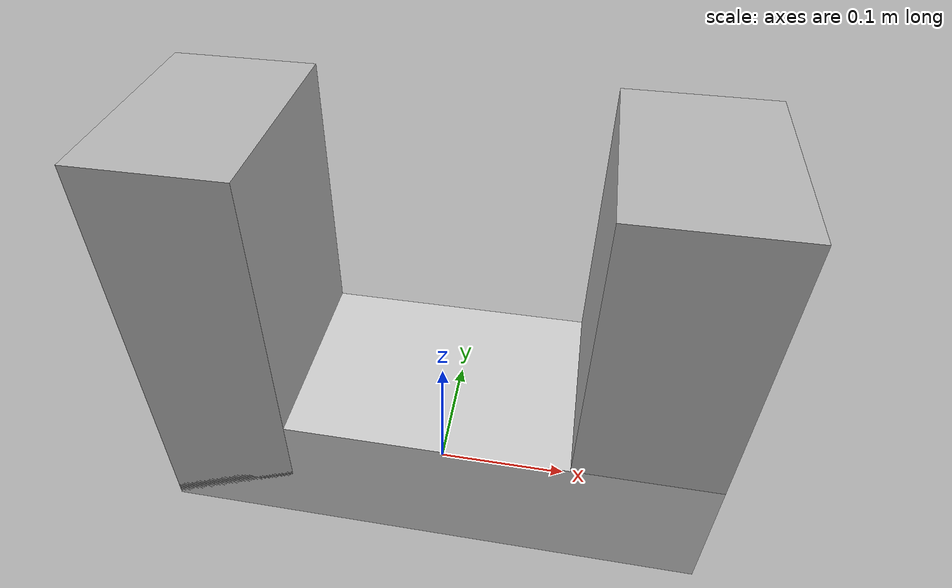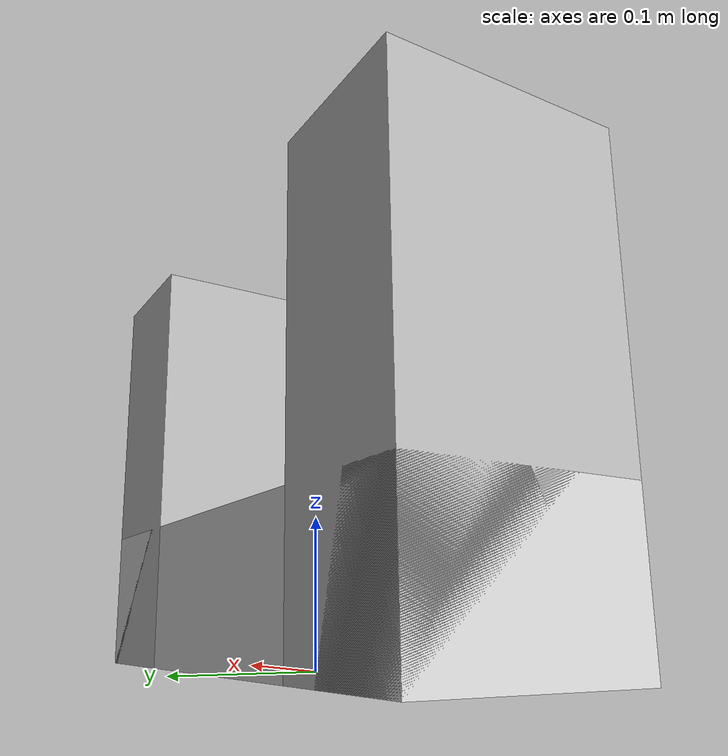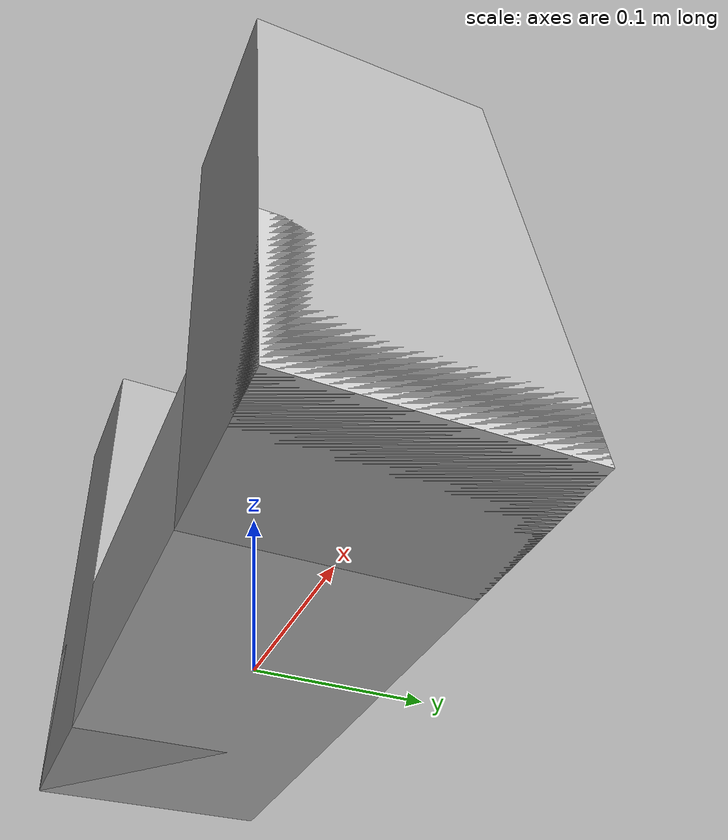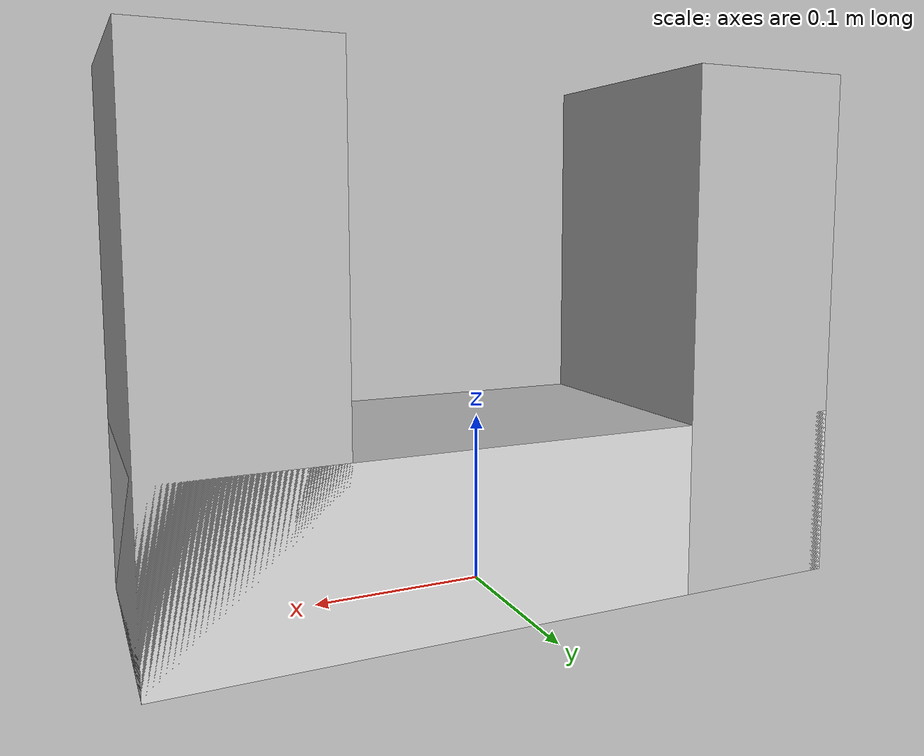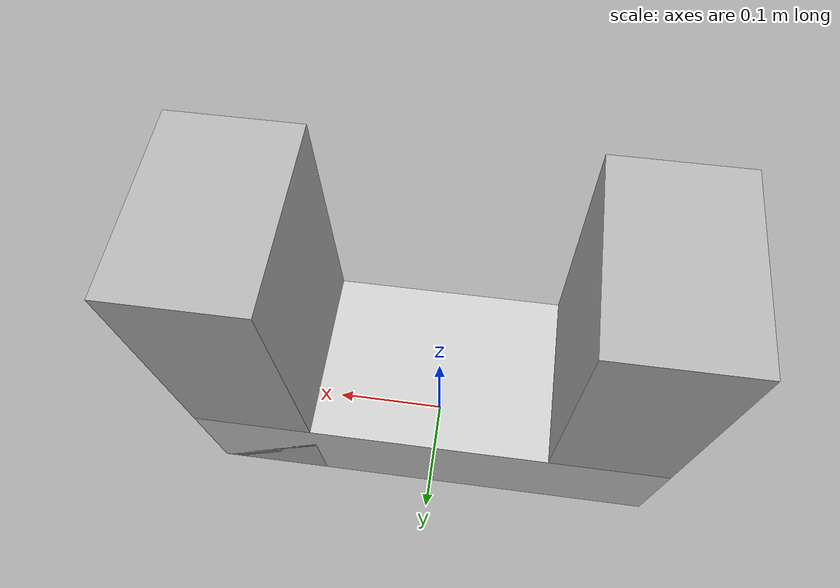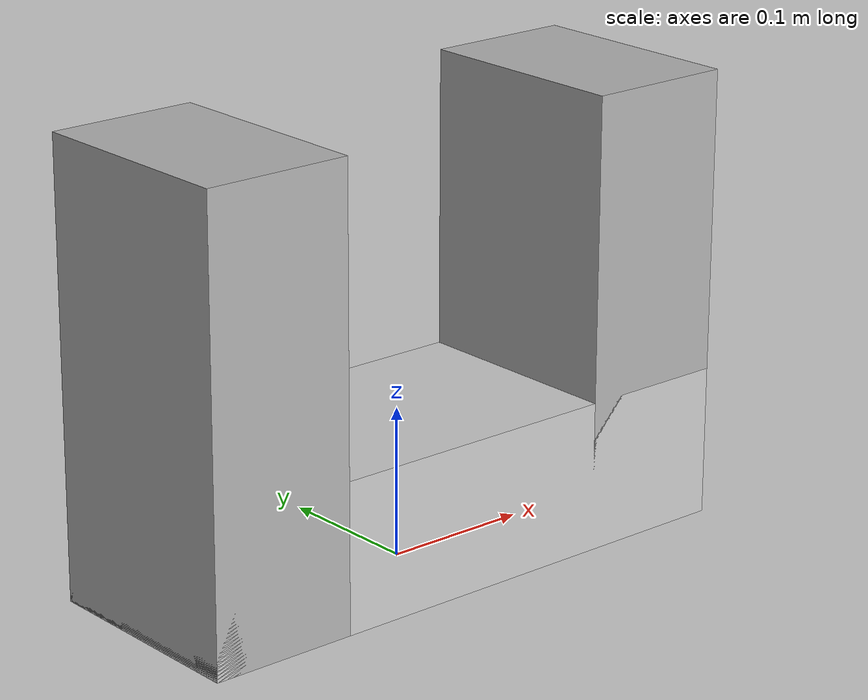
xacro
<?xml version="1.0" encoding="UTF-8"?>
<robot xmlns:xacro="http://www.ros.org/wiki/xacro"  name="RSP">

  <xacro:include filename="$(find gripper_description)/urdf/gripper.xacro" />

  <xacro:arg name="name" default="arm"/>
  <xacro:arg name="parent" default="world"/>

  <link name="$(arg parent)"/>
  <xacro:RSP name="$(arg name)" parent="$(arg parent)" />

</robot>

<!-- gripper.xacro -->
<robot xmlns:xacro="http://www.ros.org/wiki/xacro">

  <xacro:macro name="RSP" params="name parent">

    <link name="${name}_palm">
      <visual>
      	<origin xyz="0 0 0.05"  rpy="0 0 0"/>

        <geometry>
      	  <box size="0.4 0.15 0.1"/>
      	</geometry>

        <material name="yellow">
      	  <color rgba="0.8 0.8 0.8 1.0"/>
      	</material>

      </visual>
    </link>

    <link name="${name}_left_finger">
      <visual>
      	<origin xyz="0 0 0.15"  rpy="0 0 0"/>

        <geometry>
      	  <box size="0.1 0.15 0.3"/>
      	</geometry>

        <material name="gray">
      	  <color rgba="0.7 0.7 0.7 1.0"/>
      	</material>

      </visual>
    </link>

    <link name="${name}_right_finger">
      <visual>
        <origin xyz="0 0 0.15" rpy="0 0 0"/>

        <geometry>
          <box size="0.1 0.15 0.3"/>
        </geometry>

        <material name="gray">
          <color rgba="0.7 0.7 0.7 1.0"/>
        </material>

      </visual>
    </link>

    <link name="${name}_pick">

    </link>

    <joint name="${name}_palm_joint" type="fixed">
      <parent link="${parent}"/>
      <child link="${name}_palm"/>
    </joint>

    <joint name="${name}_joint" type="prismatic">
      <parent link="${name}_palm"/>
      <child link="${name}_left_finger"/>
      <origin xyz="0.15 0 0" rpy="0 0 0"/>
      <axis xyz="1 0 0"/>
      <limit effort="30" velocity="0.1" lower="-0.15" upper="0"/>
    </joint>

    <joint name="${name}_joint_2" type="prismatic">
      <parent link="${name}_palm"/>
      <child link="${name}_right_finger"/>
      <mimic joint="${name}_joint" multiplier="-1"  offset = "0"/>
      <origin xyz="-0.15 0 0" rpy="0 0 0"/>
      <axis xyz="1 0 0"/>
      <limit effort="30" velocity="0.1" lower="-0.15" upper="0"/>
    </joint>

    <joint name="${name}_pick" type="fixed">
      <parent link="${name}_palm"/>
      <child link="${name}_pick"/>
      <origin xyz="0.0 0.0 0.3"/>
    </joint>

  </xacro:macro>

</robot>
